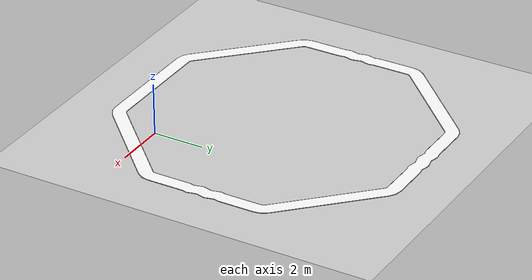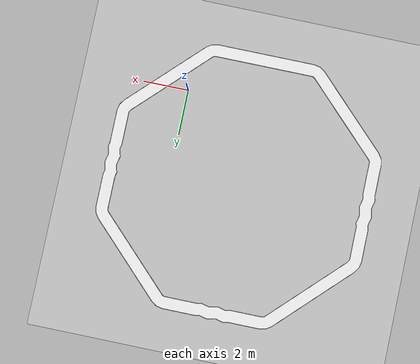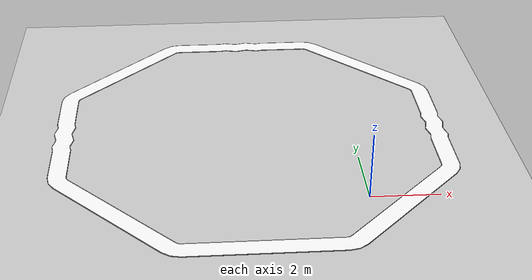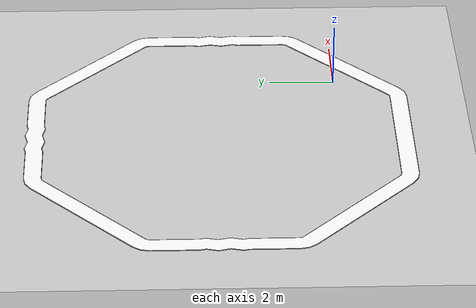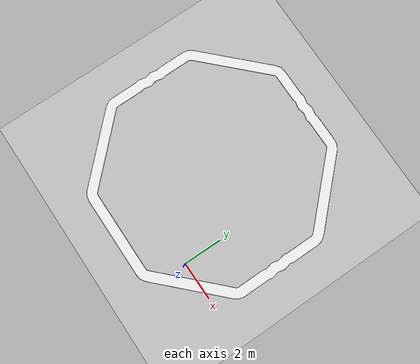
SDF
<?xml version="1.0"?>
<sdf version='1.10'>
  <world name='default'>
    <physics type='ode'>
      <max_step_size>0.0040000000000000001</max_step_size>
      <real_time_factor>1</real_time_factor>
      <real_time_update_rate>250</real_time_update_rate>
    </physics>
    <plugin name='gz::sim::systems::Physics' filename='gz-sim-physics-system'/>
    <plugin name='gz::sim::systems::UserCommands' filename='gz-sim-user-commands-system'/>
    <plugin name='gz::sim::systems::SceneBroadcaster' filename='gz-sim-scene-broadcaster-system'/>
    <plugin name='gz::sim::systems::Contact' filename='gz-sim-contact-system'/>
    <plugin name='gz::sim::systems::Imu' filename='gz-sim-imu-system'/>
    <plugin name='gz::sim::systems::Magnetometer' filename='gz-sim-magnetometer-system'/>
    <plugin name='gz::sim::systems::Altimeter' filename='gz-sim-altimeter-system'/>
    <plugin name='gz::sim::systems::NavSat' filename='gz-sim-navsat-system'/>
    <plugin name='gz::sim::systems::Sensors' filename='gz-sim-sensors-system'>
      <render_engine>ogre2</render_engine>
    </plugin>
    <gui fullscreen='false'>
      <plugin name='3D View' filename='GzScene3D'>
        <gz-gui>
          <title>3D View</title>
          <property type='bool' key='showTitleBar'>0</property>
          <property type='string' key='state'>docked</property>
        </gz-gui>
        <engine>ogre2</engine>
        <scene>scene</scene>
        <ambient_light>0.5984631152222222 0.5984631152222222 0.5984631152222222</ambient_light>
        <background_color>0.8984631152222222 0.8984631152222222 0.8984631152222222</background_color>
        <camera_pose>-6 0 6 0 0.5 0</camera_pose>
      </plugin>
      <plugin name='World control' filename='WorldControl'>
        <gz-gui>
          <title>World control</title>
          <property type='bool' key='showTitleBar'>0</property>
          <property type='bool' key='resizable'>0</property>
          <property type='double' key='height'>72</property>
          <property type='double' key='width'>121</property>
          <property type='double' key='z'>1</property>
          <property type='string' key='state'>floating</property>
          <anchors target='3D View'>
            <line own='left' target='left'/>
            <line own='bottom' target='bottom'/>
          </anchors>
        </gz-gui>
        <play_pause>1</play_pause>
        <step>1</step>
        <start_paused>1</start_paused>
      </plugin>
      <plugin name='World stats' filename='WorldStats'>
        <gz-gui>
          <title>World stats</title>
          <property type='bool' key='showTitleBar'>0</property>
          <property type='bool' key='resizable'>0</property>
          <property type='double' key='height'>110</property>
          <property type='double' key='width'>290</property>
          <property type='double' key='z'>1</property>
          <property type='string' key='state'>floating</property>
          <anchors target='3D View'>
            <line own='right' target='right'/>
            <line own='bottom' target='bottom'/>
          </anchors>
        </gz-gui>
        <sim_time>1</sim_time>
        <real_time>1</real_time>
        <real_time_factor>1</real_time_factor>
        <iterations>1</iterations>
      </plugin>
    </gui>
    <gravity>0 0 -9.8000000000000007</gravity>
    <magnetic_field>6.0000000000000002e-06 2.3e-05 -4.1999999999999998e-05</magnetic_field>
    <atmosphere type='adiabatic'/>
    <spherical_coordinates>
      <surface_model>EARTH_WGS84</surface_model>
      <latitude_deg>39.79480109851339</latitude_deg>
      <longitude_deg>-84.08631702793322</longitude_deg>
      <elevation>265.2</elevation>
      <heading_deg>0</heading_deg>
    </spherical_coordinates>
    <scene>
      <grid>true</grid>
      <ambient>0.400000006 0.400000006 0.400000006 1</ambient>
      <background>0.699999988 0.699999988 0.699999988 1</background>
      <shadows>false</shadows>
    </scene>
    <model name='ground_plane'>
      <static>true</static>
      <link name='link'>
        <collision name='collision'>
          <geometry>
            <plane>
              <normal>0 0 1</normal>
              <size>1 1</size>
            </plane>
          </geometry>
          <surface>
            <friction>
              <ode/>
            </friction>
            <bounce/>
            <contact/>
          </surface>
        </collision>
        <visual name='visual'>
          <geometry>
            <plane>
              <normal>0 0 1</normal>
              <size>100 100</size>
            </plane>
          </geometry>
          <material>
            <ambient>0.800000012 0.800000012 0.800000012 1</ambient>
            <diffuse>0.800000012 0.800000012 0.800000012 1</diffuse>
            <specular>0.800000012 0.800000012 0.800000012 1</specular>
          </material>
        </visual>
        <pose>0 0 0 0 0 0</pose>
        <inertial>
          <pose>0 0 0 0 0 0</pose>
          <mass>1</mass>
          <inertia>
            <ixx>1</ixx>
            <ixy>0</ixy>
            <ixz>0</ixz>
            <iyy>1</iyy>
            <iyz>0</iyz>
            <izz>1</izz>
          </inertia>
        </inertial>
        <enable_wind>false</enable_wind>
      </link>
      <pose>0 0 0 0 0 0</pose>
      <self_collide>false</self_collide>
    </model>
    <light name='sunUTC' type='directional'>
      <pose>0 0 500 0 0 0</pose>
      <cast_shadows>false</cast_shadows>
      <intensity>1</intensity>
      <direction>0.001 0.625 -0.78000000000000003</direction>
      <diffuse>0.903999984 0.903999984 0.903999984 1</diffuse>
      <specular>0.270999998 0.270999998 0.270999998 1</specular>
      <attenuation>
        <range>2000</range>
        <linear>0</linear>
        <constant>1</constant>
        <quadratic>0</quadratic>
      </attenuation>
      <spot>
        <inner_angle>0</inner_angle>
        <outer_angle>0</outer_angle>
        <falloff>0</falloff>
      </spot>
    </light>
     <model name='nxp_raceway_octagon'>
	    <pose>-5 -2 -0.009 0 0 0</pose>
	    <link name='nxp_raceway_octagon_link'>
	      <collision name='nxp_raceway_octagon_collision'>
		<pose>-4.0 -.255 -.04 0 0 0</pose>
		<geometry>
		  <mesh>
		    <scale>1 1 1</scale>
		    <uri>models://nxp_raceway_octagon/meshes/CourseOctaSwingInside.dae</uri>
		  </mesh>
		</geometry>
	      </collision>
	      <visual name='nxp_raceway_octagon_inside_visual'>
		<pose>-4.0 -.255 -.04 0 0 0</pose>
		<geometry>
		  <mesh>
		    <scale>1 1 1</scale>
		    <uri>models://nxp_raceway_octagon/meshes/CourseOctaSwingInside.dae</uri>
		  </mesh>
		</geometry>
	     </visual>
	      <visual name='nxp_raceway_octagon_border_visual'>
		<pose>-4.02 -.275 -.04 0 0 0</pose>
		<geometry>
		  <mesh>
		    <scale>1 1 1</scale>
		    <uri>models://nxp_raceway_octagon/meshes/CourseOctaSwingBorder.dae</uri>
		  </mesh>
		</geometry>
	     </visual>
	    </link>
	    <cast_shadows>0</cast_shadows>
	    <static>1</static>
      </model>
  </world>
</sdf>
